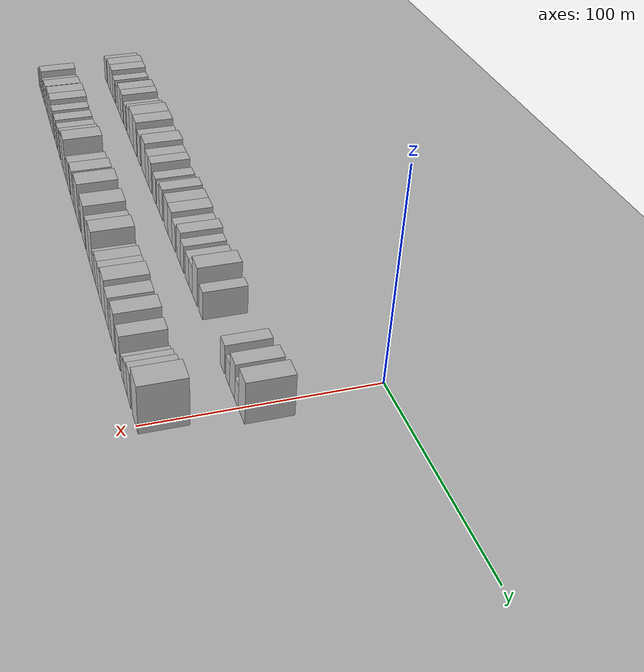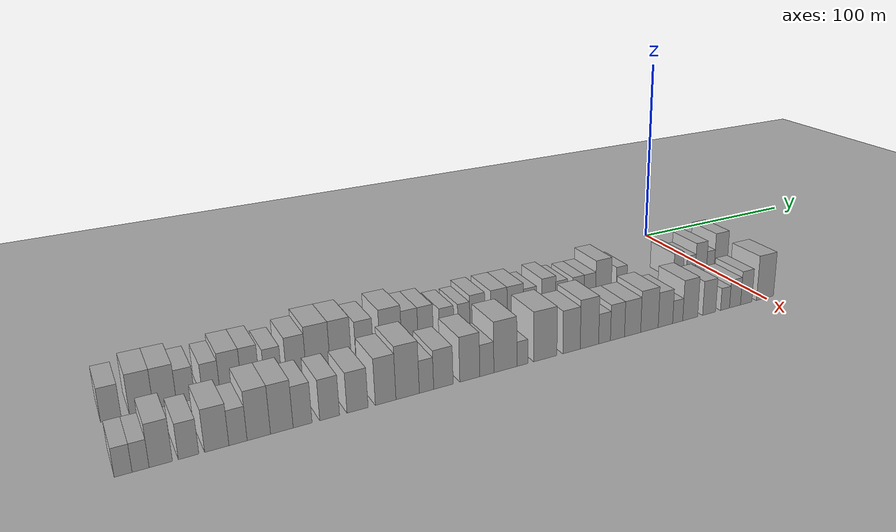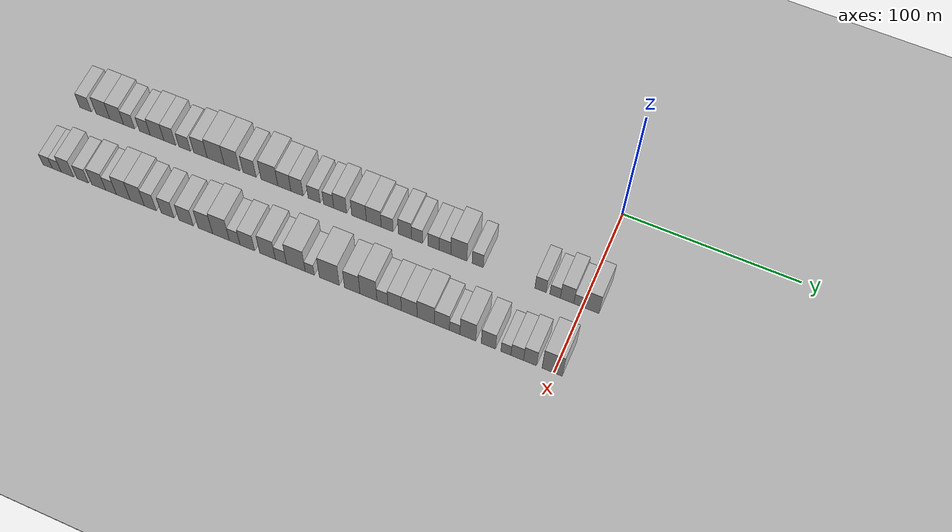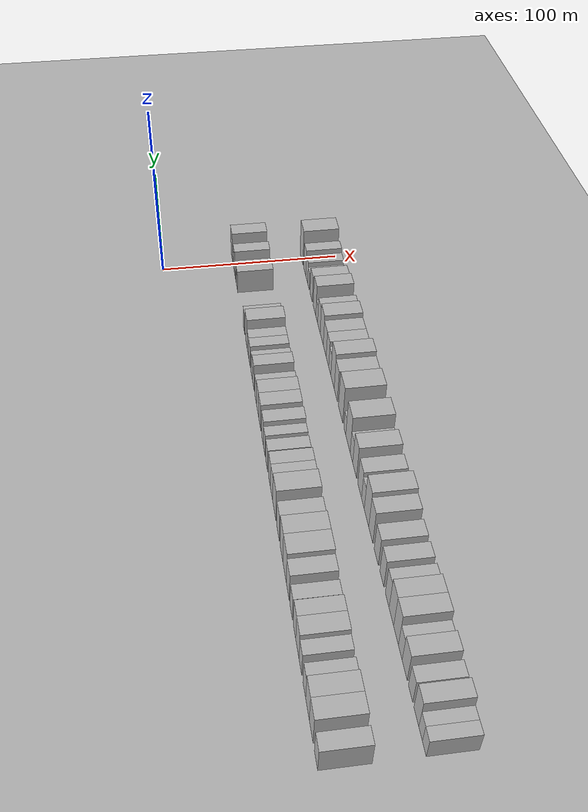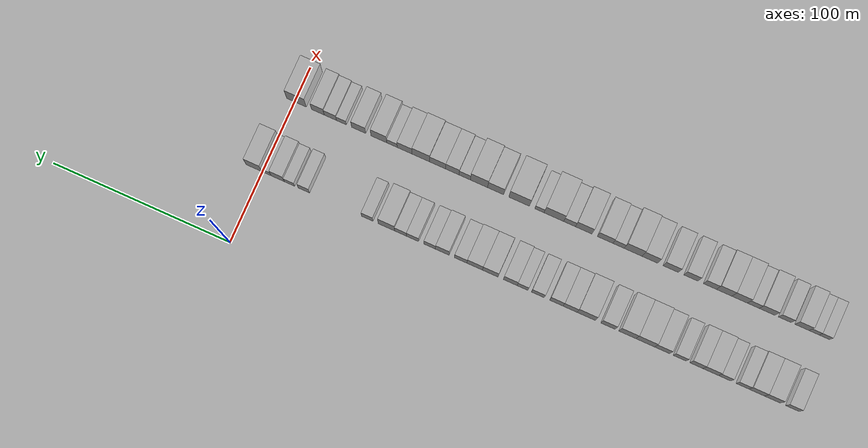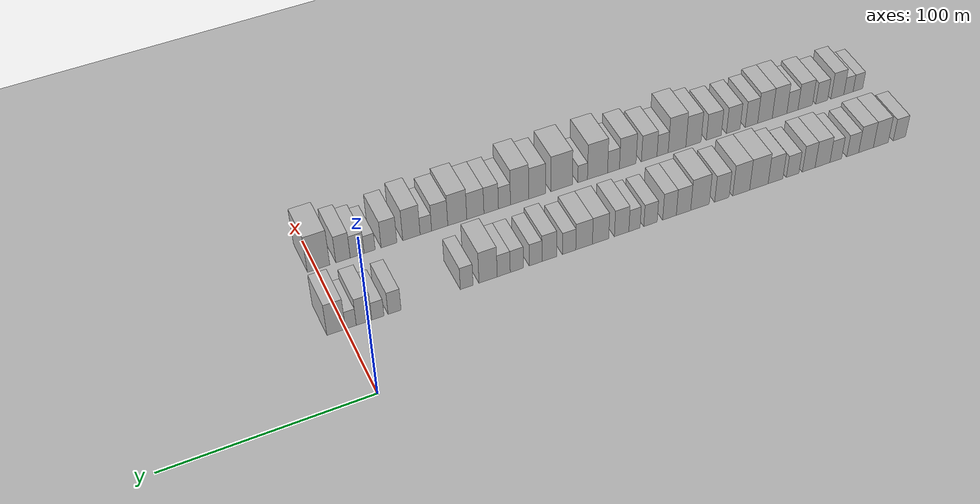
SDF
<sdf version="1.6">
 <world name="default">
  <include><name>ground_plane_1</name><uri>model://HANNAS_ground_plane</uri></include>
  <include>
   <name>ground_plane_2</name>
   <uri>model://HANNAS_ground_plane</uri>
   <pose>100 0 0  0 0 0</pose>
  </include>
  <model name="building_1">
   <static>1</static>
   <pose>50.0000 -296.3226 0 0.000000 0.000000 0.000000</pose>
   <link name="link">
    <pose>0 0 7.50 0 0 0</pose>
    <collision name="collision"><geometry><box><size>20.0000 7.3548 15.0000</size></box></geometry></collision>
    <visual name="visual">
     <cast_shadows>0</cast_shadows>
     <geometry><box><size>20.0000 7.3548 15.0000</size></box></geometry>
     <material>
      <script>
       <uri>model://HANNAS_wall/materials/scripts</uri>
       <uri>model://HANNAS_wall/materials/textures</uri>
       <name>vrc/HANNAS_wall</name>
      </script>
     </material>
    </visual>
   </link>
  </model>
  <model name="building_2">
   <static>1</static>
   <pose>50.0000 -285.2588 0 0.000000 0.000000 0.000000</pose>
   <link name="link">
    <pose>0 0 9.00 0 0 0</pose>
    <collision name="collision"><geometry><box><size>20.0000 8.7729 18.0000</size></box></geometry></collision>
    <visual name="visual">
     <cast_shadows>0</cast_shadows>
     <geometry><box><size>20.0000 8.7729 18.0000</size></box></geometry>
     <material>
      <script>
       <uri>model://HANNAS_wall/materials/scripts</uri>
       <uri>model://HANNAS_wall/materials/textures</uri>
       <name>vrc/HANNAS_wall</name>
      </script>
     </material>
    </visual>
   </link>
  </model>
  <model name="building_3">
   <static>1</static>
   <pose>50.0000 -276.5379 0 0.000000 0.000000 0.000000</pose>
   <link name="link">
    <pose>0 0 9.00 0 0 0</pose>
    <collision name="collision"><geometry><box><size>20.0000 8.6689 18.0000</size></box></geometry></collision>
    <visual name="visual">
     <cast_shadows>0</cast_shadows>
     <geometry><box><size>20.0000 8.6689 18.0000</size></box></geometry>
     <material>
      <script>
       <uri>model://HANNAS_wall/materials/scripts</uri>
       <uri>model://HANNAS_wall/materials/textures</uri>
       <name>vrc/HANNAS_wall</name>
      </script>
     </material>
    </visual>
   </link>
  </model>
  <model name="building_4">
   <static>1</static>
   <pose>50.0000 -268.7203 0 0.000000 0.000000 0.000000</pose>
   <link name="link">
    <pose>0 0 7.50 0 0 0</pose>
    <collision name="collision"><geometry><box><size>20.0000 6.9662 15.0000</size></box></geometry></collision>
    <visual name="visual">
     <cast_shadows>0</cast_shadows>
     <geometry><box><size>20.0000 6.9662 15.0000</size></box></geometry>
     <material>
      <script>
       <uri>model://HANNAS_wall/materials/scripts</uri>
       <uri>model://HANNAS_wall/materials/textures</uri>
       <name>vrc/HANNAS_wall</name>
      </script>
     </material>
    </visual>
   </link>
  </model>
  <model name="building_5">
   <static>1</static>
   <pose>50.0000 -258.8322 0 0.000000 0.000000 0.000000</pose>
   <link name="link">
    <pose>0 0 7.50 0 0 0</pose>
    <collision name="collision"><geometry><box><size>20.0000 6.8100 15.0000</size></box></geometry></collision>
    <visual name="visual">
     <cast_shadows>0</cast_shadows>
     <geometry><box><size>20.0000 6.8100 15.0000</size></box></geometry>
     <material>
      <script>
       <uri>model://HANNAS_wall/materials/scripts</uri>
       <uri>model://HANNAS_wall/materials/textures</uri>
       <name>vrc/HANNAS_wall</name>
      </script>
     </material>
    </visual>
   </link>
  </model>
  <model name="building_6">
   <static>1</static>
   <pose>50.0000 -251.1433 0 0.000000 0.000000 0.000000</pose>
   <link name="link">
    <pose>0 0 9.00 0 0 0</pose>
    <collision name="collision"><geometry><box><size>20.0000 8.5678 18.0000</size></box></geometry></collision>
    <visual name="visual">
     <cast_shadows>0</cast_shadows>
     <geometry><box><size>20.0000 8.5678 18.0000</size></box></geometry>
     <material>
      <script>
       <uri>model://HANNAS_wall/materials/scripts</uri>
       <uri>model://HANNAS_wall/materials/textures</uri>
       <name>vrc/HANNAS_wall</name>
      </script>
     </material>
    </visual>
   </link>
  </model>
  <model name="building_7">
   <static>1</static>
   <pose>50.0000 -243.2045 0 0.000000 0.000000 0.000000</pose>
   <link name="link">
    <pose>0 0 9.00 0 0 0</pose>
    <collision name="collision"><geometry><box><size>20.0000 7.3098 18.0000</size></box></geometry></collision>
    <visual name="visual">
     <cast_shadows>0</cast_shadows>
     <geometry><box><size>20.0000 7.3098 18.0000</size></box></geometry>
     <material>
      <script>
       <uri>model://HANNAS_wall/materials/scripts</uri>
       <uri>model://HANNAS_wall/materials/textures</uri>
       <name>vrc/HANNAS_wall</name>
      </script>
     </material>
    </visual>
   </link>
  </model>
  <model name="building_8">
   <static>1</static>
   <pose>50.0000 -233.9707 0 0.000000 0.000000 0.000000</pose>
   <link name="link">
    <pose>0 0 7.50 0 0 0</pose>
    <collision name="collision"><geometry><box><size>20.0000 7.1579 15.0000</size></box></geometry></collision>
    <visual name="visual">
     <cast_shadows>0</cast_shadows>
     <geometry><box><size>20.0000 7.1579 15.0000</size></box></geometry>
     <material>
      <script>
       <uri>model://HANNAS_wall/materials/scripts</uri>
       <uri>model://HANNAS_wall/materials/textures</uri>
       <name>vrc/HANNAS_wall</name>
      </script>
     </material>
    </visual>
   </link>
  </model>
  <model name="building_9">
   <static>1</static>
   <pose>50.0000 -224.2129 0 0.000000 0.000000 0.000000</pose>
   <link name="link">
    <pose>0 0 9.00 0 0 0</pose>
    <collision name="collision"><geometry><box><size>20.0000 8.3578 18.0000</size></box></geometry></collision>
    <visual name="visual">
     <cast_shadows>0</cast_shadows>
     <geometry><box><size>20.0000 8.3578 18.0000</size></box></geometry>
     <material>
      <script>
       <uri>model://HANNAS_wall/materials/scripts</uri>
       <uri>model://HANNAS_wall/materials/textures</uri>
       <name>vrc/HANNAS_wall</name>
      </script>
     </material>
    </visual>
   </link>
  </model>
  <model name="building_10">
   <static>1</static>
   <pose>50.0000 -214.8225 0 0.000000 0.000000 0.000000</pose>
   <link name="link">
    <pose>0 0 10.50 0 0 0</pose>
    <collision name="collision"><geometry><box><size>20.0000 10.4230 21.0000</size></box></geometry></collision>
    <visual name="visual">
     <cast_shadows>0</cast_shadows>
     <geometry><box><size>20.0000 10.4230 21.0000</size></box></geometry>
     <material>
      <script>
       <uri>model://HANNAS_wall/materials/scripts</uri>
       <uri>model://HANNAS_wall/materials/textures</uri>
       <name>vrc/HANNAS_wall</name>
      </script>
     </material>
    </visual>
   </link>
  </model>
  <model name="building_11">
   <static>1</static>
   <pose>50.0000 -204.8685 0 0.000000 0.000000 0.000000</pose>
   <link name="link">
    <pose>0 0 10.50 0 0 0</pose>
    <collision name="collision"><geometry><box><size>20.0000 9.4849 21.0000</size></box></geometry></collision>
    <visual name="visual">
     <cast_shadows>0</cast_shadows>
     <geometry><box><size>20.0000 9.4849 21.0000</size></box></geometry>
     <material>
      <script>
       <uri>model://HANNAS_wall/materials/scripts</uri>
       <uri>model://HANNAS_wall/materials/textures</uri>
       <name>vrc/HANNAS_wall</name>
      </script>
     </material>
    </visual>
   </link>
  </model>
  <model name="building_12">
   <static>1</static>
   <pose>50.0000 -194.1113 0 0.000000 0.000000 0.000000</pose>
   <link name="link">
    <pose>0 0 9.00 0 0 0</pose>
    <collision name="collision"><geometry><box><size>20.0000 8.0295 18.0000</size></box></geometry></collision>
    <visual name="visual">
     <cast_shadows>0</cast_shadows>
     <geometry><box><size>20.0000 8.0295 18.0000</size></box></geometry>
     <material>
      <script>
       <uri>model://HANNAS_wall/materials/scripts</uri>
       <uri>model://HANNAS_wall/materials/textures</uri>
       <name>vrc/HANNAS_wall</name>
      </script>
     </material>
    </visual>
   </link>
  </model>
  <model name="building_13">
   <static>1</static>
   <pose>50.0000 -181.9876 0 0.000000 0.000000 0.000000</pose>
   <link name="link">
    <pose>0 0 10.50 0 0 0</pose>
    <collision name="collision"><geometry><box><size>20.0000 10.2180 21.0000</size></box></geometry></collision>
    <visual name="visual">
     <cast_shadows>0</cast_shadows>
     <geometry><box><size>20.0000 10.2180 21.0000</size></box></geometry>
     <material>
      <script>
       <uri>model://HANNAS_wall/materials/scripts</uri>
       <uri>model://HANNAS_wall/materials/textures</uri>
       <name>vrc/HANNAS_wall</name>
      </script>
     </material>
    </visual>
   </link>
  </model>
  <model name="building_14">
   <static>1</static>
   <pose>50.0000 -172.9549 0 0.000000 0.000000 0.000000</pose>
   <link name="link">
    <pose>0 0 9.00 0 0 0</pose>
    <collision name="collision"><geometry><box><size>20.0000 7.8474 18.0000</size></box></geometry></collision>
    <visual name="visual">
     <cast_shadows>0</cast_shadows>
     <geometry><box><size>20.0000 7.8474 18.0000</size></box></geometry>
     <material>
      <script>
       <uri>model://HANNAS_wall/materials/scripts</uri>
       <uri>model://HANNAS_wall/materials/textures</uri>
       <name>vrc/HANNAS_wall</name>
      </script>
     </material>
    </visual>
   </link>
  </model>
  <model name="building_15">
   <static>1</static>
   <pose>50.0000 -165.3196 0 0.000000 0.000000 0.000000</pose>
   <link name="link">
    <pose>0 0 9.00 0 0 0</pose>
    <collision name="collision"><geometry><box><size>20.0000 7.4234 18.0000</size></box></geometry></collision>
    <visual name="visual">
     <cast_shadows>0</cast_shadows>
     <geometry><box><size>20.0000 7.4234 18.0000</size></box></geometry>
     <material>
      <script>
       <uri>model://HANNAS_wall/materials/scripts</uri>
       <uri>model://HANNAS_wall/materials/textures</uri>
       <name>vrc/HANNAS_wall</name>
      </script>
     </material>
    </visual>
   </link>
  </model>
  <model name="building_16">
   <static>1</static>
   <pose>50.0000 -155.0057 0 0.000000 0.000000 0.000000</pose>
   <link name="link">
    <pose>0 0 7.50 0 0 0</pose>
    <collision name="collision"><geometry><box><size>20.0000 7.2043 15.0000</size></box></geometry></collision>
    <visual name="visual">
     <cast_shadows>0</cast_shadows>
     <geometry><box><size>20.0000 7.2043 15.0000</size></box></geometry>
     <material>
      <script>
       <uri>model://HANNAS_wall/materials/scripts</uri>
       <uri>model://HANNAS_wall/materials/textures</uri>
       <name>vrc/HANNAS_wall</name>
      </script>
     </material>
    </visual>
   </link>
  </model>
  <model name="building_17">
   <static>1</static>
   <pose>50.0000 -146.3915 0 0.000000 0.000000 0.000000</pose>
   <link name="link">
    <pose>0 0 7.50 0 0 0</pose>
    <collision name="collision"><geometry><box><size>20.0000 6.0242 15.0000</size></box></geometry></collision>
    <visual name="visual">
     <cast_shadows>0</cast_shadows>
     <geometry><box><size>20.0000 6.0242 15.0000</size></box></geometry>
     <material>
      <script>
       <uri>model://HANNAS_wall/materials/scripts</uri>
       <uri>model://HANNAS_wall/materials/textures</uri>
       <name>vrc/HANNAS_wall</name>
      </script>
     </material>
    </visual>
   </link>
  </model>
  <model name="building_18">
   <static>1</static>
   <pose>50.0000 -139.5196 0 0.000000 0.000000 0.000000</pose>
   <link name="link">
    <pose>0 0 9.00 0 0 0</pose>
    <collision name="collision"><geometry><box><size>20.0000 7.7195 18.0000</size></box></geometry></collision>
    <visual name="visual">
     <cast_shadows>0</cast_shadows>
     <geometry><box><size>20.0000 7.7195 18.0000</size></box></geometry>
     <material>
      <script>
       <uri>model://HANNAS_wall/materials/scripts</uri>
       <uri>model://HANNAS_wall/materials/textures</uri>
       <name>vrc/HANNAS_wall</name>
      </script>
     </material>
    </visual>
   </link>
  </model>
  <model name="building_19">
   <static>1</static>
   <pose>50.0000 -128.3467 0 0.000000 0.000000 0.000000</pose>
   <link name="link">
    <pose>0 0 9.00 0 0 0</pose>
    <collision name="collision"><geometry><box><size>20.0000 8.6264 18.0000</size></box></geometry></collision>
    <visual name="visual">
     <cast_shadows>0</cast_shadows>
     <geometry><box><size>20.0000 8.6264 18.0000</size></box></geometry>
     <material>
      <script>
       <uri>model://HANNAS_wall/materials/scripts</uri>
       <uri>model://HANNAS_wall/materials/textures</uri>
       <name>vrc/HANNAS_wall</name>
      </script>
     </material>
    </visual>
   </link>
  </model>
  <model name="building_20">
   <static>1</static>
   <pose>50.0000 -119.6518 0 0.000000 0.000000 0.000000</pose>
   <link name="link">
    <pose>0 0 9.00 0 0 0</pose>
    <collision name="collision"><geometry><box><size>20.0000 8.7634 18.0000</size></box></geometry></collision>
    <visual name="visual">
     <cast_shadows>0</cast_shadows>
     <geometry><box><size>20.0000 8.7634 18.0000</size></box></geometry>
     <material>
      <script>
       <uri>model://HANNAS_wall/materials/scripts</uri>
       <uri>model://HANNAS_wall/materials/textures</uri>
       <name>vrc/HANNAS_wall</name>
      </script>
     </material>
    </visual>
   </link>
  </model>
  <model name="building_21">
   <static>1</static>
   <pose>50.0000 -111.7621 0 0.000000 0.000000 0.000000</pose>
   <link name="link">
    <pose>0 0 7.50 0 0 0</pose>
    <collision name="collision"><geometry><box><size>20.0000 7.0159 15.0000</size></box></geometry></collision>
    <visual name="visual">
     <cast_shadows>0</cast_shadows>
     <geometry><box><size>20.0000 7.0159 15.0000</size></box></geometry>
     <material>
      <script>
       <uri>model://HANNAS_wall/materials/scripts</uri>
       <uri>model://HANNAS_wall/materials/textures</uri>
       <name>vrc/HANNAS_wall</name>
      </script>
     </material>
    </visual>
   </link>
  </model>
  <model name="building_22">
   <static>1</static>
   <pose>50.0000 -101.4349 0 0.000000 0.000000 0.000000</pose>
   <link name="link">
    <pose>0 0 9.00 0 0 0</pose>
    <collision name="collision"><geometry><box><size>20.0000 7.6385 18.0000</size></box></geometry></collision>
    <visual name="visual">
     <cast_shadows>0</cast_shadows>
     <geometry><box><size>20.0000 7.6385 18.0000</size></box></geometry>
     <material>
      <script>
       <uri>model://HANNAS_wall/materials/scripts</uri>
       <uri>model://HANNAS_wall/materials/textures</uri>
       <name>vrc/HANNAS_wall</name>
      </script>
     </material>
    </visual>
   </link>
  </model>
  <model name="building_23">
   <static>1</static>
   <pose>50.0000 -94.3597 0 0.000000 0.000000 0.000000</pose>
   <link name="link">
    <pose>0 0 7.50 0 0 0</pose>
    <collision name="collision"><geometry><box><size>20.0000 6.5120 15.0000</size></box></geometry></collision>
    <visual name="visual">
     <cast_shadows>0</cast_shadows>
     <geometry><box><size>20.0000 6.5120 15.0000</size></box></geometry>
     <material>
      <script>
       <uri>model://HANNAS_wall/materials/scripts</uri>
       <uri>model://HANNAS_wall/materials/textures</uri>
       <name>vrc/HANNAS_wall</name>
      </script>
     </material>
    </visual>
   </link>
  </model>
  <model name="building_24">
   <static>1</static>
   <pose>50.0000 -84.7293 0 0.000000 0.000000 0.000000</pose>
   <link name="link">
    <pose>0 0 7.50 0 0 0</pose>
    <collision name="collision"><geometry><box><size>20.0000 6.7488 15.0000</size></box></geometry></collision>
    <visual name="visual">
     <cast_shadows>0</cast_shadows>
     <geometry><box><size>20.0000 6.7488 15.0000</size></box></geometry>
     <material>
      <script>
       <uri>model://HANNAS_wall/materials/scripts</uri>
       <uri>model://HANNAS_wall/materials/textures</uri>
       <name>vrc/HANNAS_wall</name>
      </script>
     </material>
    </visual>
   </link>
  </model>
  <model name="building_25">
   <static>1</static>
   <pose>50.0000 -78.0399 0 0.000000 0.000000 0.000000</pose>
   <link name="link">
    <pose>0 0 7.50 0 0 0</pose>
    <collision name="collision"><geometry><box><size>20.0000 6.6301 15.0000</size></box></geometry></collision>
    <visual name="visual">
     <cast_shadows>0</cast_shadows>
     <geometry><box><size>20.0000 6.6301 15.0000</size></box></geometry>
     <material>
      <script>
       <uri>model://HANNAS_wall/materials/scripts</uri>
       <uri>model://HANNAS_wall/materials/textures</uri>
       <name>vrc/HANNAS_wall</name>
      </script>
     </material>
    </visual>
   </link>
  </model>
  <model name="building_26">
   <static>1</static>
   <pose>50.0000 -70.1083 0 0.000000 0.000000 0.000000</pose>
   <link name="link">
    <pose>0 0 10.50 0 0 0</pose>
    <collision name="collision"><geometry><box><size>20.0000 9.2331 21.0000</size></box></geometry></collision>
    <visual name="visual">
     <cast_shadows>0</cast_shadows>
     <geometry><box><size>20.0000 9.2331 21.0000</size></box></geometry>
     <material>
      <script>
       <uri>model://HANNAS_wall/materials/scripts</uri>
       <uri>model://HANNAS_wall/materials/textures</uri>
       <name>vrc/HANNAS_wall</name>
      </script>
     </material>
    </visual>
   </link>
  </model>
  <model name="building_27">
   <static>1</static>
   <pose>50.0000 -59.2978 0 0.000000 0.000000 0.000000</pose>
   <link name="link">
    <pose>0 0 7.50 0 0 0</pose>
    <collision name="collision"><geometry><box><size>20.0000 6.3880 15.0000</size></box></geometry></collision>
    <visual name="visual">
     <cast_shadows>0</cast_shadows>
     <geometry><box><size>20.0000 6.3880 15.0000</size></box></geometry>
     <material>
      <script>
       <uri>model://HANNAS_wall/materials/scripts</uri>
       <uri>model://HANNAS_wall/materials/textures</uri>
       <name>vrc/HANNAS_wall</name>
      </script>
     </material>
    </visual>
   </link>
  </model>
  <model name="building_28">
   <static>1</static>
   <pose>50.0000 -23.5410 0 0.000000 0.000000 0.000000</pose>
   <link name="link">
    <pose>0 0 7.50 0 0 0</pose>
    <collision name="collision"><geometry><box><size>20.0000 6.3752 15.0000</size></box></geometry></collision>
    <visual name="visual">
     <cast_shadows>0</cast_shadows>
     <geometry><box><size>20.0000 6.3752 15.0000</size></box></geometry>
     <material>
      <script>
       <uri>model://HANNAS_wall/materials/scripts</uri>
       <uri>model://HANNAS_wall/materials/textures</uri>
       <name>vrc/HANNAS_wall</name>
      </script>
     </material>
    </visual>
   </link>
  </model>
  <model name="building_29">
   <static>1</static>
   <pose>50.0000 -15.4080 0 0.000000 0.000000 0.000000</pose>
   <link name="link">
    <pose>0 0 6.00 0 0 0</pose>
    <collision name="collision"><geometry><box><size>20.0000 5.8906 12.0000</size></box></geometry></collision>
    <visual name="visual">
     <cast_shadows>0</cast_shadows>
     <geometry><box><size>20.0000 5.8906 12.0000</size></box></geometry>
     <material>
      <script>
       <uri>model://HANNAS_wall/materials/scripts</uri>
       <uri>model://HANNAS_wall/materials/textures</uri>
       <name>vrc/HANNAS_wall</name>
      </script>
     </material>
    </visual>
   </link>
  </model>
  <model name="building_30">
   <static>1</static>
   <pose>50.0000 -8.6986 0 0.000000 0.000000 0.000000</pose>
   <link name="link">
    <pose>0 0 9.00 0 0 0</pose>
    <collision name="collision"><geometry><box><size>20.0000 7.5284 18.0000</size></box></geometry></collision>
    <visual name="visual">
     <cast_shadows>0</cast_shadows>
     <geometry><box><size>20.0000 7.5284 18.0000</size></box></geometry>
     <material>
      <script>
       <uri>model://HANNAS_wall/materials/scripts</uri>
       <uri>model://HANNAS_wall/materials/textures</uri>
       <name>vrc/HANNAS_wall</name>
      </script>
     </material>
    </visual>
   </link>
  </model>
  <model name="building_31">
   <static>1</static>
   <pose>50.0000 -2.3356 0 0.000000 0.000000 0.000000</pose>
   <link name="link">
    <pose>0 0 6.00 0 0 0</pose>
    <collision name="collision"><geometry><box><size>20.0000 5.1975 12.0000</size></box></geometry></collision>
    <visual name="visual">
     <cast_shadows>0</cast_shadows>
     <geometry><box><size>20.0000 5.1975 12.0000</size></box></geometry>
     <material>
      <script>
       <uri>model://HANNAS_wall/materials/scripts</uri>
       <uri>model://HANNAS_wall/materials/textures</uri>
       <name>vrc/HANNAS_wall</name>
      </script>
     </material>
    </visual>
   </link>
  </model>
  <model name="building_32">
   <static>1</static>
   <pose>50.0000 4.6970 0 0.000000 0.000000 0.000000</pose>
   <link name="link">
    <pose>0 0 10.50 0 0 0</pose>
    <collision name="collision"><geometry><box><size>20.0000 8.8677 21.0000</size></box></geometry></collision>
    <visual name="visual">
     <cast_shadows>0</cast_shadows>
     <geometry><box><size>20.0000 8.8677 21.0000</size></box></geometry>
     <material>
      <script>
       <uri>model://HANNAS_wall/materials/scripts</uri>
       <uri>model://HANNAS_wall/materials/textures</uri>
       <name>vrc/HANNAS_wall</name>
      </script>
     </material>
    </visual>
   </link>
  </model>
  <model name="building_66">
   <static>1</static>
   <pose>90.0000 -297.0856 0 0.000000 0.000000 0.000000</pose>
   <link name="link">
    <pose>0 0 6.00 0 0 0</pose>
    <collision name="collision"><geometry><box><size>20.0000 5.8288 12.0000</size></box></geometry></collision>
    <visual name="visual">
     <cast_shadows>0</cast_shadows>
     <geometry><box><size>20.0000 5.8288 12.0000</size></box></geometry>
     <material>
      <script>
       <uri>model://HANNAS_wall/materials/scripts</uri>
       <uri>model://HANNAS_wall/materials/textures</uri>
       <name>vrc/HANNAS_wall</name>
      </script>
     </material>
    </visual>
   </link>
  </model>
  <model name="building_67">
   <static>1</static>
   <pose>90.0000 -291.3584 0 0.000000 0.000000 0.000000</pose>
   <link name="link">
    <pose>0 0 6.00 0 0 0</pose>
    <collision name="collision"><geometry><box><size>20.0000 5.6254 12.0000</size></box></geometry></collision>
    <visual name="visual">
     <cast_shadows>0</cast_shadows>
     <geometry><box><size>20.0000 5.6254 12.0000</size></box></geometry>
     <material>
      <script>
       <uri>model://HANNAS_wall/materials/scripts</uri>
       <uri>model://HANNAS_wall/materials/textures</uri>
       <name>vrc/HANNAS_wall</name>
      </script>
     </material>
    </visual>
   </link>
  </model>
  <model name="building_68">
   <static>1</static>
   <pose>90.0000 -284.6246 0 0.000000 0.000000 0.000000</pose>
   <link name="link">
    <pose>0 0 9.00 0 0 0</pose>
    <collision name="collision"><geometry><box><size>20.0000 7.8423 18.0000</size></box></geometry></collision>
    <visual name="visual">
     <cast_shadows>0</cast_shadows>
     <geometry><box><size>20.0000 7.8423 18.0000</size></box></geometry>
     <material>
      <script>
       <uri>model://HANNAS_wall/materials/scripts</uri>
       <uri>model://HANNAS_wall/materials/textures</uri>
       <name>vrc/HANNAS_wall</name>
      </script>
     </material>
    </visual>
   </link>
  </model>
  <model name="building_69">
   <static>1</static>
   <pose>90.0000 -275.1547 0 0.000000 0.000000 0.000000</pose>
   <link name="link">
    <pose>0 0 7.50 0 0 0</pose>
    <collision name="collision"><geometry><box><size>20.0000 7.0974 15.0000</size></box></geometry></collision>
    <visual name="visual">
     <cast_shadows>0</cast_shadows>
     <geometry><box><size>20.0000 7.0974 15.0000</size></box></geometry>
     <material>
      <script>
       <uri>model://HANNAS_wall/materials/scripts</uri>
       <uri>model://HANNAS_wall/materials/textures</uri>
       <name>vrc/HANNAS_wall</name>
      </script>
     </material>
    </visual>
   </link>
  </model>
  <model name="building_70">
   <static>1</static>
   <pose>90.0000 -265.2765 0 0.000000 0.000000 0.000000</pose>
   <link name="link">
    <pose>0 0 9.00 0 0 0</pose>
    <collision name="collision"><geometry><box><size>20.0000 8.6590 18.0000</size></box></geometry></collision>
    <visual name="visual">
     <cast_shadows>0</cast_shadows>
     <geometry><box><size>20.0000 8.6590 18.0000</size></box></geometry>
     <material>
      <script>
       <uri>model://HANNAS_wall/materials/scripts</uri>
       <uri>model://HANNAS_wall/materials/textures</uri>
       <name>vrc/HANNAS_wall</name>
      </script>
     </material>
    </visual>
   </link>
  </model>
  <model name="building_71">
   <static>1</static>
   <pose>90.0000 -257.6493 0 0.000000 0.000000 0.000000</pose>
   <link name="link">
    <pose>0 0 7.50 0 0 0</pose>
    <collision name="collision"><geometry><box><size>20.0000 6.5954 15.0000</size></box></geometry></collision>
    <visual name="visual">
     <cast_shadows>0</cast_shadows>
     <geometry><box><size>20.0000 6.5954 15.0000</size></box></geometry>
     <material>
      <script>
       <uri>model://HANNAS_wall/materials/scripts</uri>
       <uri>model://HANNAS_wall/materials/textures</uri>
       <name>vrc/HANNAS_wall</name>
      </script>
     </material>
    </visual>
   </link>
  </model>
  <model name="building_72">
   <static>1</static>
   <pose>90.0000 -250.0332 0 0.000000 0.000000 0.000000</pose>
   <link name="link">
    <pose>0 0 10.50 0 0 0</pose>
    <collision name="collision"><geometry><box><size>20.0000 8.6369 21.0000</size></box></geometry></collision>
    <visual name="visual">
     <cast_shadows>0</cast_shadows>
     <geometry><box><size>20.0000 8.6369 21.0000</size></box></geometry>
     <material>
      <script>
       <uri>model://HANNAS_wall/materials/scripts</uri>
       <uri>model://HANNAS_wall/materials/textures</uri>
       <name>vrc/HANNAS_wall</name>
      </script>
     </material>
    </visual>
   </link>
  </model>
  <model name="building_73">
   <static>1</static>
   <pose>90.0000 -241.4345 0 0.000000 0.000000 0.000000</pose>
   <link name="link">
    <pose>0 0 10.50 0 0 0</pose>
    <collision name="collision"><geometry><box><size>20.0000 8.5606 21.0000</size></box></geometry></collision>
    <visual name="visual">
     <cast_shadows>0</cast_shadows>
     <geometry><box><size>20.0000 8.5606 21.0000</size></box></geometry>
     <material>
      <script>
       <uri>model://HANNAS_wall/materials/scripts</uri>
       <uri>model://HANNAS_wall/materials/textures</uri>
       <name>vrc/HANNAS_wall</name>
      </script>
     </material>
    </visual>
   </link>
  </model>
  <model name="building_74">
   <static>1</static>
   <pose>90.0000 -233.5163 0 0.000000 0.000000 0.000000</pose>
   <link name="link">
    <pose>0 0 9.00 0 0 0</pose>
    <collision name="collision"><geometry><box><size>20.0000 7.2758 18.0000</size></box></geometry></collision>
    <visual name="visual">
     <cast_shadows>0</cast_shadows>
     <geometry><box><size>20.0000 7.2758 18.0000</size></box></geometry>
     <material>
      <script>
       <uri>model://HANNAS_wall/materials/scripts</uri>
       <uri>model://HANNAS_wall/materials/textures</uri>
       <name>vrc/HANNAS_wall</name>
      </script>
     </material>
    </visual>
   </link>
  </model>
  <model name="building_75">
   <static>1</static>
   <pose>90.0000 -222.9421 0 0.000000 0.000000 0.000000</pose>
   <link name="link">
    <pose>0 0 9.00 0 0 0</pose>
    <collision name="collision"><geometry><box><size>20.0000 7.8727 18.0000</size></box></geometry></collision>
    <visual name="visual">
     <cast_shadows>0</cast_shadows>
     <geometry><box><size>20.0000 7.8727 18.0000</size></box></geometry>
     <material>
      <script>
       <uri>model://HANNAS_wall/materials/scripts</uri>
       <uri>model://HANNAS_wall/materials/textures</uri>
       <name>vrc/HANNAS_wall</name>
      </script>
     </material>
    </visual>
   </link>
  </model>
  <model name="building_76">
   <static>1</static>
   <pose>90.0000 -211.7024 0 0.000000 0.000000 0.000000</pose>
   <link name="link">
    <pose>0 0 9.00 0 0 0</pose>
    <collision name="collision"><geometry><box><size>20.0000 8.6066 18.0000</size></box></geometry></collision>
    <visual name="visual">
     <cast_shadows>0</cast_shadows>
     <geometry><box><size>20.0000 8.6066 18.0000</size></box></geometry>
     <material>
      <script>
       <uri>model://HANNAS_wall/materials/scripts</uri>
       <uri>model://HANNAS_wall/materials/textures</uri>
       <name>vrc/HANNAS_wall</name>
      </script>
     </material>
    </visual>
   </link>
  </model>
  <model name="building_77">
   <static>1</static>
   <pose>90.0000 -200.0580 0 0.000000 0.000000 0.000000</pose>
   <link name="link">
    <pose>0 0 10.50 0 0 0</pose>
    <collision name="collision"><geometry><box><size>20.0000 8.6824 21.0000</size></box></geometry></collision>
    <visual name="visual">
     <cast_shadows>0</cast_shadows>
     <geometry><box><size>20.0000 8.6824 21.0000</size></box></geometry>
     <material>
      <script>
       <uri>model://HANNAS_wall/materials/scripts</uri>
       <uri>model://HANNAS_wall/materials/textures</uri>
       <name>vrc/HANNAS_wall</name>
      </script>
     </material>
    </visual>
   </link>
  </model>
  <model name="building_78">
   <static>1</static>
   <pose>90.0000 -190.6922 0 0.000000 0.000000 0.000000</pose>
   <link name="link">
    <pose>0 0 12.00 0 0 0</pose>
    <collision name="collision"><geometry><box><size>20.0000 10.0491 24.0000</size></box></geometry></collision>
    <visual name="visual">
     <cast_shadows>0</cast_shadows>
     <geometry><box><size>20.0000 10.0491 24.0000</size></box></geometry>
     <material>
      <script>
       <uri>model://HANNAS_wall/materials/scripts</uri>
       <uri>model://HANNAS_wall/materials/textures</uri>
       <name>vrc/HANNAS_wall</name>
      </script>
     </material>
    </visual>
   </link>
  </model>
  <model name="building_79">
   <static>1</static>
   <pose>90.0000 -182.5244 0 0.000000 0.000000 0.000000</pose>
   <link name="link">
    <pose>0 0 7.50 0 0 0</pose>
    <collision name="collision"><geometry><box><size>20.0000 6.2866 15.0000</size></box></geometry></collision>
    <visual name="visual">
     <cast_shadows>0</cast_shadows>
     <geometry><box><size>20.0000 6.2866 15.0000</size></box></geometry>
     <material>
      <script>
       <uri>model://HANNAS_wall/materials/scripts</uri>
       <uri>model://HANNAS_wall/materials/textures</uri>
       <name>vrc/HANNAS_wall</name>
      </script>
     </material>
    </visual>
   </link>
  </model>
  <model name="building_80">
   <static>1</static>
   <pose>90.0000 -175.0175 0 0.000000 0.000000 0.000000</pose>
   <link name="link">
    <pose>0 0 9.00 0 0 0</pose>
    <collision name="collision"><geometry><box><size>20.0000 8.7271 18.0000</size></box></geometry></collision>
    <visual name="visual">
     <cast_shadows>0</cast_shadows>
     <geometry><box><size>20.0000 8.7271 18.0000</size></box></geometry>
     <material>
      <script>
       <uri>model://HANNAS_wall/materials/scripts</uri>
       <uri>model://HANNAS_wall/materials/textures</uri>
       <name>vrc/HANNAS_wall</name>
      </script>
     </material>
    </visual>
   </link>
  </model>
  <model name="building_81">
   <static>1</static>
   <pose>90.0000 -163.0383 0 0.000000 0.000000 0.000000</pose>
   <link name="link">
    <pose>0 0 10.50 0 0 0</pose>
    <collision name="collision"><geometry><box><size>20.0000 9.2314 21.0000</size></box></geometry></collision>
    <visual name="visual">
     <cast_shadows>0</cast_shadows>
     <geometry><box><size>20.0000 9.2314 21.0000</size></box></geometry>
     <material>
      <script>
       <uri>model://HANNAS_wall/materials/scripts</uri>
       <uri>model://HANNAS_wall/materials/textures</uri>
       <name>vrc/HANNAS_wall</name>
      </script>
     </material>
    </visual>
   </link>
  </model>
  <model name="building_82">
   <static>1</static>
   <pose>90.0000 -155.1365 0 0.000000 0.000000 0.000000</pose>
   <link name="link">
    <pose>0 0 7.50 0 0 0</pose>
    <collision name="collision"><geometry><box><size>20.0000 6.5722 15.0000</size></box></geometry></collision>
    <visual name="visual">
     <cast_shadows>0</cast_shadows>
     <geometry><box><size>20.0000 6.5722 15.0000</size></box></geometry>
     <material>
      <script>
       <uri>model://HANNAS_wall/materials/scripts</uri>
       <uri>model://HANNAS_wall/materials/textures</uri>
       <name>vrc/HANNAS_wall</name>
      </script>
     </material>
    </visual>
   </link>
  </model>
  <model name="building_83">
   <static>1</static>
   <pose>90.0000 -146.3379 0 0.000000 0.000000 0.000000</pose>
   <link name="link">
    <pose>0 0 12.00 0 0 0</pose>
    <collision name="collision"><geometry><box><size>20.0000 11.0249 24.0000</size></box></geometry></collision>
    <visual name="visual">
     <cast_shadows>0</cast_shadows>
     <geometry><box><size>20.0000 11.0249 24.0000</size></box></geometry>
     <material>
      <script>
       <uri>model://HANNAS_wall/materials/scripts</uri>
       <uri>model://HANNAS_wall/materials/textures</uri>
       <name>vrc/HANNAS_wall</name>
      </script>
     </material>
    </visual>
   </link>
  </model>
  <model name="building_84">
   <static>1</static>
   <pose>90.0000 -138.2031 0 0.000000 0.000000 0.000000</pose>
   <link name="link">
    <pose>0 0 6.00 0 0 0</pose>
    <collision name="collision"><geometry><box><size>20.0000 5.2448 12.0000</size></box></geometry></collision>
    <visual name="visual">
     <cast_shadows>0</cast_shadows>
     <geometry><box><size>20.0000 5.2448 12.0000</size></box></geometry>
     <material>
      <script>
       <uri>model://HANNAS_wall/materials/scripts</uri>
       <uri>model://HANNAS_wall/materials/textures</uri>
       <name>vrc/HANNAS_wall</name>
      </script>
     </material>
    </visual>
   </link>
  </model>
  <model name="building_85">
   <static>1</static>
   <pose>90.0000 -126.7942 0 0.000000 0.000000 0.000000</pose>
   <link name="link">
    <pose>0 0 12.00 0 0 0</pose>
    <collision name="collision"><geometry><box><size>20.0000 11.5730 24.0000</size></box></geometry></collision>
    <visual name="visual">
     <cast_shadows>0</cast_shadows>
     <geometry><box><size>20.0000 11.5730 24.0000</size></box></geometry>
     <material>
      <script>
       <uri>model://HANNAS_wall/materials/scripts</uri>
       <uri>model://HANNAS_wall/materials/textures</uri>
       <name>vrc/HANNAS_wall</name>
      </script>
     </material>
    </visual>
   </link>
  </model>
  <model name="building_86">
   <static>1</static>
   <pose>90.0000 -113.5232 0 0.000000 0.000000 0.000000</pose>
   <link name="link">
    <pose>0 0 10.50 0 0 0</pose>
    <collision name="collision"><geometry><box><size>20.0000 8.9691 21.0000</size></box></geometry></collision>
    <visual name="visual">
     <cast_shadows>0</cast_shadows>
     <geometry><box><size>20.0000 8.9691 21.0000</size></box></geometry>
     <material>
      <script>
       <uri>model://HANNAS_wall/materials/scripts</uri>
       <uri>model://HANNAS_wall/materials/textures</uri>
       <name>vrc/HANNAS_wall</name>
      </script>
     </material>
    </visual>
   </link>
  </model>
  <model name="building_87">
   <static>1</static>
   <pose>90.0000 -104.1891 0 0.000000 0.000000 0.000000</pose>
   <link name="link">
    <pose>0 0 12.00 0 0 0</pose>
    <collision name="collision"><geometry><box><size>20.0000 9.6991 24.0000</size></box></geometry></collision>
    <visual name="visual">
     <cast_shadows>0</cast_shadows>
     <geometry><box><size>20.0000 9.6991 24.0000</size></box></geometry>
     <material>
      <script>
       <uri>model://HANNAS_wall/materials/scripts</uri>
       <uri>model://HANNAS_wall/materials/textures</uri>
       <name>vrc/HANNAS_wall</name>
      </script>
     </material>
    </visual>
   </link>
  </model>
  <model name="building_88">
   <static>1</static>
   <pose>90.0000 -96.1640 0 0.000000 0.000000 0.000000</pose>
   <link name="link">
    <pose>0 0 7.50 0 0 0</pose>
    <collision name="collision"><geometry><box><size>20.0000 6.3512 15.0000</size></box></geometry></collision>
    <visual name="visual">
     <cast_shadows>0</cast_shadows>
     <geometry><box><size>20.0000 6.3512 15.0000</size></box></geometry>
     <material>
      <script>
       <uri>model://HANNAS_wall/materials/scripts</uri>
       <uri>model://HANNAS_wall/materials/textures</uri>
       <name>vrc/HANNAS_wall</name>
      </script>
     </material>
    </visual>
   </link>
  </model>
  <model name="building_89">
   <static>1</static>
   <pose>90.0000 -89.1589 0 0.000000 0.000000 0.000000</pose>
   <link name="link">
    <pose>0 0 9.00 0 0 0</pose>
    <collision name="collision"><geometry><box><size>20.0000 7.6590 18.0000</size></box></geometry></collision>
    <visual name="visual">
     <cast_shadows>0</cast_shadows>
     <geometry><box><size>20.0000 7.6590 18.0000</size></box></geometry>
     <material>
      <script>
       <uri>model://HANNAS_wall/materials/scripts</uri>
       <uri>model://HANNAS_wall/materials/textures</uri>
       <name>vrc/HANNAS_wall</name>
      </script>
     </material>
    </visual>
   </link>
  </model>
  <model name="building_90">
   <static>1</static>
   <pose>90.0000 -80.8425 0 0.000000 0.000000 0.000000</pose>
   <link name="link">
    <pose>0 0 9.00 0 0 0</pose>
    <collision name="collision"><geometry><box><size>20.0000 8.9738 18.0000</size></box></geometry></collision>
    <visual name="visual">
     <cast_shadows>0</cast_shadows>
     <geometry><box><size>20.0000 8.9738 18.0000</size></box></geometry>
     <material>
      <script>
       <uri>model://HANNAS_wall/materials/scripts</uri>
       <uri>model://HANNAS_wall/materials/textures</uri>
       <name>vrc/HANNAS_wall</name>
      </script>
     </material>
    </visual>
   </link>
  </model>
  <model name="building_91">
   <static>1</static>
   <pose>90.0000 -71.4004 0 0.000000 0.000000 0.000000</pose>
   <link name="link">
    <pose>0 0 10.50 0 0 0</pose>
    <collision name="collision"><geometry><box><size>20.0000 9.9104 21.0000</size></box></geometry></collision>
    <visual name="visual">
     <cast_shadows>0</cast_shadows>
     <geometry><box><size>20.0000 9.9104 21.0000</size></box></geometry>
     <material>
      <script>
       <uri>model://HANNAS_wall/materials/scripts</uri>
       <uri>model://HANNAS_wall/materials/textures</uri>
       <name>vrc/HANNAS_wall</name>
      </script>
     </material>
    </visual>
   </link>
  </model>
  <model name="building_92">
   <static>1</static>
   <pose>90.0000 -62.2688 0 0.000000 0.000000 0.000000</pose>
   <link name="link">
    <pose>0 0 9.00 0 0 0</pose>
    <collision name="collision"><geometry><box><size>20.0000 8.3527 18.0000</size></box></geometry></collision>
    <visual name="visual">
     <cast_shadows>0</cast_shadows>
     <geometry><box><size>20.0000 8.3527 18.0000</size></box></geometry>
     <material>
      <script>
       <uri>model://HANNAS_wall/materials/scripts</uri>
       <uri>model://HANNAS_wall/materials/textures</uri>
       <name>vrc/HANNAS_wall</name>
      </script>
     </material>
    </visual>
   </link>
  </model>
  <model name="building_93">
   <static>1</static>
   <pose>90.0000 -55.1355 0 0.000000 0.000000 0.000000</pose>
   <link name="link">
    <pose>0 0 6.00 0 0 0</pose>
    <collision name="collision"><geometry><box><size>20.0000 5.9140 12.0000</size></box></geometry></collision>
    <visual name="visual">
     <cast_shadows>0</cast_shadows>
     <geometry><box><size>20.0000 5.9140 12.0000</size></box></geometry>
     <material>
      <script>
       <uri>model://HANNAS_wall/materials/scripts</uri>
       <uri>model://HANNAS_wall/materials/textures</uri>
       <name>vrc/HANNAS_wall</name>
      </script>
     </material>
    </visual>
   </link>
  </model>
  <model name="building_94">
   <static>1</static>
   <pose>90.0000 -47.7324 0 0.000000 0.000000 0.000000</pose>
   <link name="link">
    <pose>0 0 10.50 0 0 0</pose>
    <collision name="collision"><geometry><box><size>20.0000 8.8921 21.0000</size></box></geometry></collision>
    <visual name="visual">
     <cast_shadows>0</cast_shadows>
     <geometry><box><size>20.0000 8.8921 21.0000</size></box></geometry>
     <material>
      <script>
       <uri>model://HANNAS_wall/materials/scripts</uri>
       <uri>model://HANNAS_wall/materials/textures</uri>
       <name>vrc/HANNAS_wall</name>
      </script>
     </material>
    </visual>
   </link>
  </model>
  <model name="building_95">
   <static>1</static>
   <pose>90.0000 -36.3044 0 0.000000 0.000000 0.000000</pose>
   <link name="link">
    <pose>0 0 9.00 0 0 0</pose>
    <collision name="collision"><geometry><box><size>20.0000 7.9640 18.0000</size></box></geometry></collision>
    <visual name="visual">
     <cast_shadows>0</cast_shadows>
     <geometry><box><size>20.0000 7.9640 18.0000</size></box></geometry>
     <material>
      <script>
       <uri>model://HANNAS_wall/materials/scripts</uri>
       <uri>model://HANNAS_wall/materials/textures</uri>
       <name>vrc/HANNAS_wall</name>
      </script>
     </material>
    </visual>
   </link>
  </model>
  <model name="building_96">
   <static>1</static>
   <pose>90.0000 -26.5375 0 0.000000 0.000000 0.000000</pose>
   <link name="link">
    <pose>0 0 6.00 0 0 0</pose>
    <collision name="collision"><geometry><box><size>20.0000 5.5696 12.0000</size></box></geometry></collision>
    <visual name="visual">
     <cast_shadows>0</cast_shadows>
     <geometry><box><size>20.0000 5.5696 12.0000</size></box></geometry>
     <material>
      <script>
       <uri>model://HANNAS_wall/materials/scripts</uri>
       <uri>model://HANNAS_wall/materials/textures</uri>
       <name>vrc/HANNAS_wall</name>
      </script>
     </material>
    </visual>
   </link>
  </model>
  <model name="building_97">
   <static>1</static>
   <pose>90.0000 -20.2805 0 0.000000 0.000000 0.000000</pose>
   <link name="link">
    <pose>0 0 7.50 0 0 0</pose>
    <collision name="collision"><geometry><box><size>20.0000 6.9445 15.0000</size></box></geometry></collision>
    <visual name="visual">
     <cast_shadows>0</cast_shadows>
     <geometry><box><size>20.0000 6.9445 15.0000</size></box></geometry>
     <material>
      <script>
       <uri>model://HANNAS_wall/materials/scripts</uri>
       <uri>model://HANNAS_wall/materials/textures</uri>
       <name>vrc/HANNAS_wall</name>
      </script>
     </material>
    </visual>
   </link>
  </model>
  <model name="building_98">
   <static>1</static>
   <pose>90.0000 -13.1991 0 0.000000 0.000000 0.000000</pose>
   <link name="link">
    <pose>0 0 9.00 0 0 0</pose>
    <collision name="collision"><geometry><box><size>20.0000 7.2184 18.0000</size></box></geometry></collision>
    <visual name="visual">
     <cast_shadows>0</cast_shadows>
     <geometry><box><size>20.0000 7.2184 18.0000</size></box></geometry>
     <material>
      <script>
       <uri>model://HANNAS_wall/materials/scripts</uri>
       <uri>model://HANNAS_wall/materials/textures</uri>
       <name>vrc/HANNAS_wall</name>
      </script>
     </material>
    </visual>
   </link>
  </model>
  <model name="building_99">
   <static>1</static>
   <pose>90.0000 -1.0476 0 0.000000 0.000000 0.000000</pose>
   <link name="link">
    <pose>0 0 12.00 0 0 0</pose>
    <collision name="collision"><geometry><box><size>20.0000 11.0846 24.0000</size></box></geometry></collision>
    <visual name="visual">
     <cast_shadows>0</cast_shadows>
     <geometry><box><size>20.0000 11.0846 24.0000</size></box></geometry>
     <material>
      <script>
       <uri>model://HANNAS_wall/materials/scripts</uri>
       <uri>model://HANNAS_wall/materials/textures</uri>
       <name>vrc/HANNAS_wall</name>
      </script>
     </material>
    </visual>
   </link>
  </model>
 </world>
</sdf>
